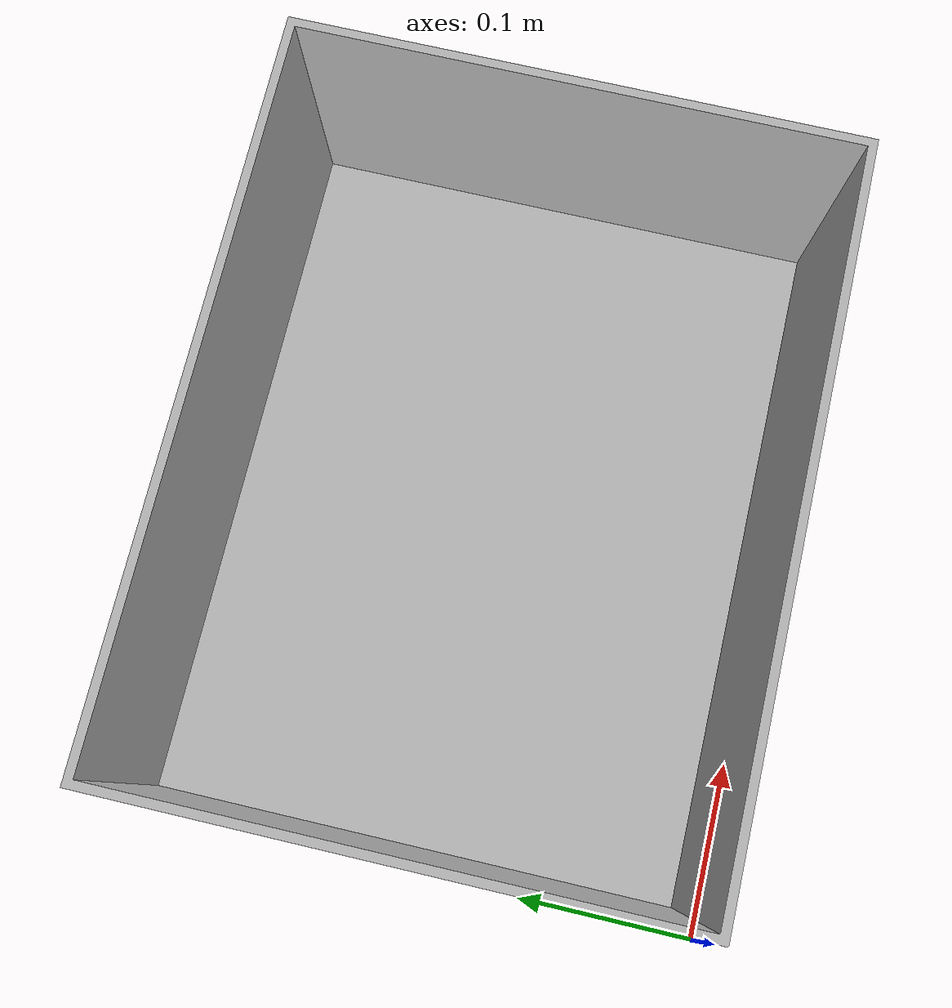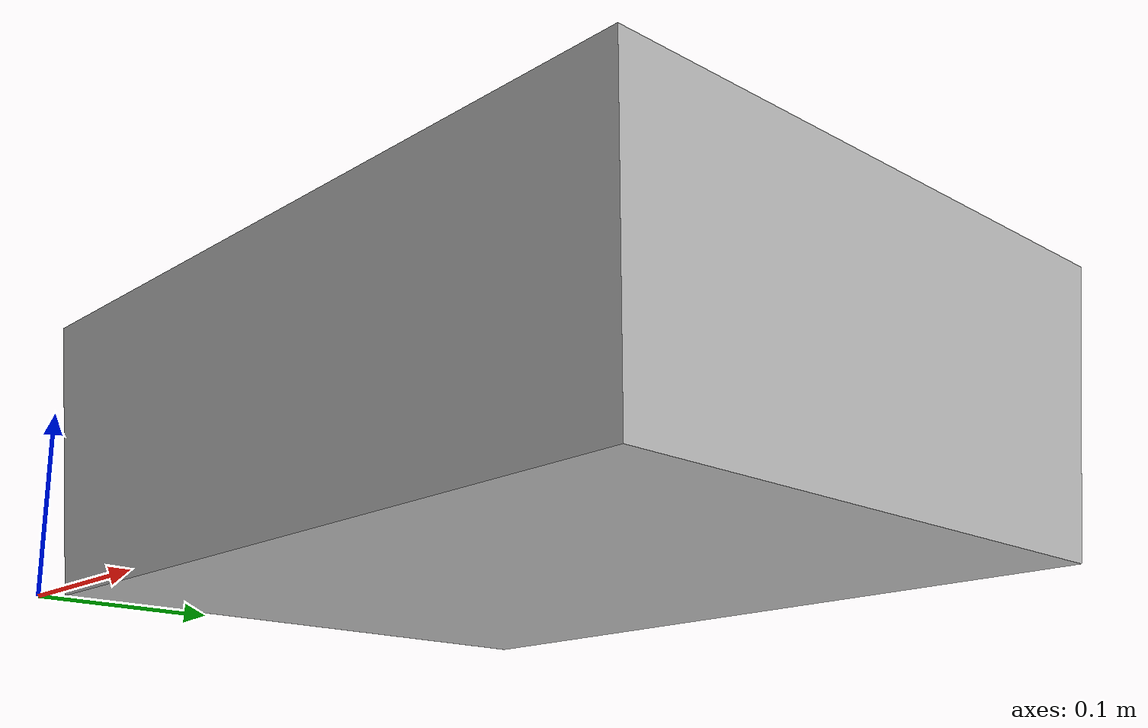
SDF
<?xml version="1.0" ?>
<sdf version="1.4">
  <model name="box">
    <static>false</static>
    <link name="link">
    <inertial>
      <pose>0.200 0.150 0.005 0 0 0</pose>
      <mass>1.55765 </mass>
	  <inertia>
	    <ixx>0.02574253499</ixx>
	    <ixy>0.0</ixy>
	    <ixz>0.0</ixz>
	    <iyy>0.04195082867</iyy>
	    <iyz>0.0</iyz>
	    <izz>0.05624236962</izz>
	  </inertia>
    </inertial>
      <collision name="collision">
        <pose>0 0 0 0 0 0</pose>
         <geometry>
          <mesh>
            <scale>0.001 0.001 0.001</scale>
            <uri>/catkin_ws/src/models/box/meshes/box.STL</uri>
          </mesh>
        </geometry>
      </collision>
      <visual name="visual">
        <geometry>
          <mesh>
            <scale>0.001 0.001 0.001</scale>
            <uri>/catkin_ws/src/models/box/meshes/box.STL</uri>
          </mesh>
        </geometry>
      </visual>
    </link>
  </model>
</sdf>
